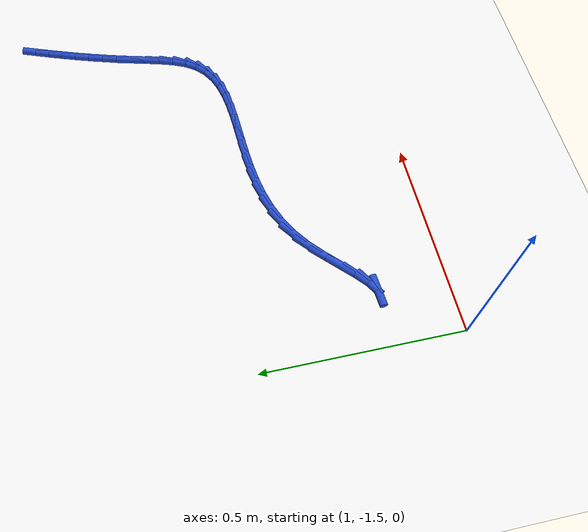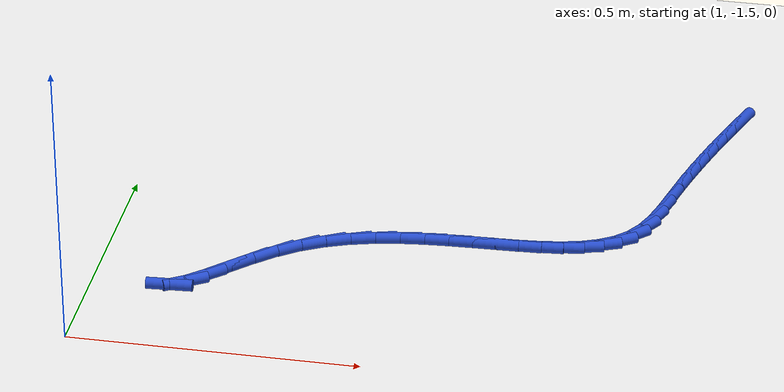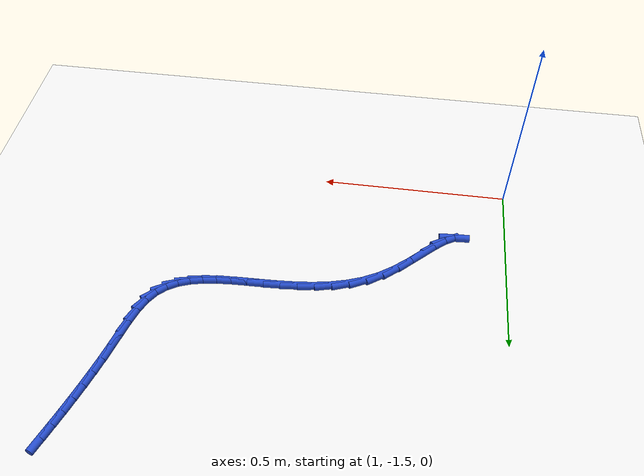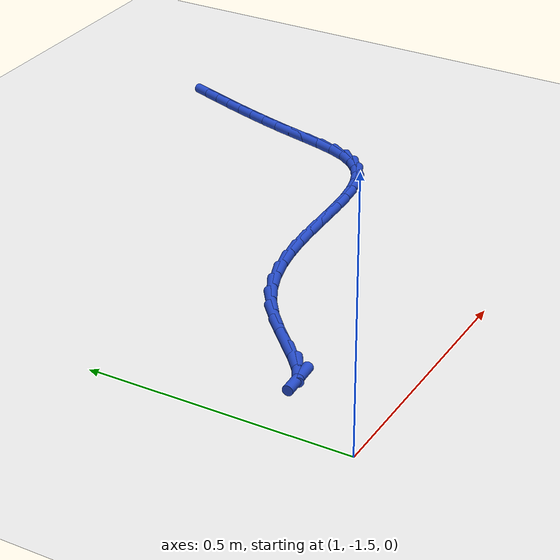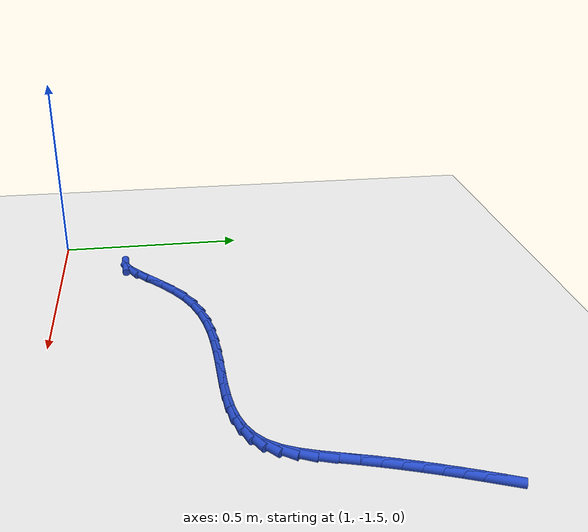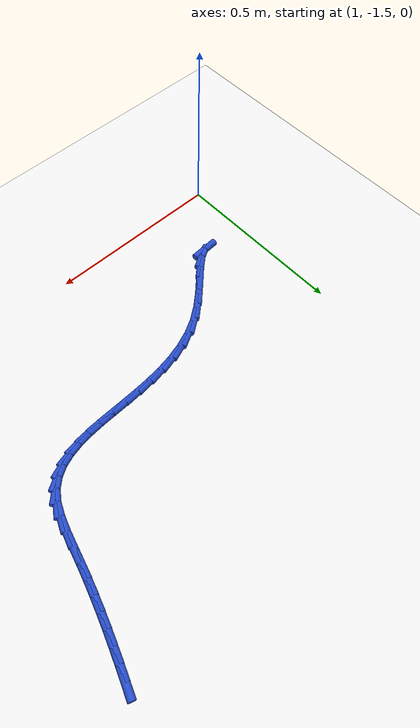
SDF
<sdf version="1.6">
 <world name="default">
  <model name="ground_plane">
   <static>1</static>
   <link name="link">
    <collision name="collision">
     <geometry><plane><normal>0 0 1</normal><size>100 100</size></plane></geometry>
     <surface><friction><ode><mu>100</mu><mu2>50</mu2></ode></friction></surface>
    </collision>
    <visual name="visual">
     <cast_shadows>0</cast_shadows>
     <geometry><plane><normal>0 0 1</normal><size>100 100</size></plane></geometry>
     <material>
      <script><uri>file://media/materials/scripts/gazebo.material</uri><name>Gazebo/WhiteGlow</name></script>
     </material>
    </visual>
   </link>
  </model>
  <model name="line">
   <link name="link_116">
    <pose>2.02360014330978 -0.607512243521702 0.01 0 1.57 1.224107569362798</pose>
    <collision name="collision">
     <geometry><cylinder><radius>0.01</radius><length>0.08</length></cylinder></geometry>
    </collision>
    <visual name="visual">
     <material>
      <script><name>Gazebo/Blue</name><uri>file://media/materials/scripts/gazebo.material</uri></script>
     </material>
     <geometry><cylinder><radius>0.01</radius><length>0.08</length></cylinder></geometry>
    </visual>
   </link>
   <link name="link_117">
    <pose>2.011055382607528 -0.642235287349777 0.01 0 1.57 1.2345394833591832</pose>
    <collision name="collision">
     <geometry><cylinder><radius>0.01</radius><length>0.08</length></cylinder></geometry>
    </collision>
    <visual name="visual">
     <material>
      <script><name>Gazebo/Blue</name><uri>file://media/materials/scripts/gazebo.material</uri></script>
     </material>
     <geometry><cylinder><radius>0.01</radius><length>0.08</length></cylinder></geometry>
    </visual>
   </link>
   <link name="link_118">
    <pose>1.998855506883958 -0.6771388568249171 0.01 0 1.57 1.2464723529939545</pose>
    <collision name="collision">
     <geometry><cylinder><radius>0.01</radius><length>0.08</length></cylinder></geometry>
    </collision>
    <visual name="visual">
     <material>
      <script><name>Gazebo/Blue</name><uri>file://media/materials/scripts/gazebo.material</uri></script>
     </material>
     <geometry><cylinder><radius>0.01</radius><length>0.08</length></cylinder></geometry>
    </visual>
   </link>
   <link name="link_119">
    <pose>1.9870168550860985 -0.7123524874140951 0.01 0 1.57 1.2597694968657667</pose>
    <collision name="collision">
     <geometry><cylinder><radius>0.01</radius><length>0.08</length></cylinder></geometry>
    </collision>
    <visual name="visual">
     <material>
      <script><name>Gazebo/Blue</name><uri>file://media/materials/scripts/gazebo.material</uri></script>
     </material>
     <geometry><cylinder><radius>0.01</radius><length>0.08</length></cylinder></geometry>
    </visual>
   </link>
   <link name="link_120">
    <pose>1.9755557661609815 -0.7480057145842833 0.01 0 1.57 1.274269606430975</pose>
    <collision name="collision">
     <geometry><cylinder><radius>0.01</radius><length>0.08</length></cylinder></geometry>
    </collision>
    <visual name="visual">
     <material>
      <script><name>Gazebo/Blue</name><uri>file://media/materials/scripts/gazebo.material</uri></script>
     </material>
     <geometry><cylinder><radius>0.01</radius><length>0.08</length></cylinder></geometry>
    </visual>
   </link>
   <link name="link_121">
    <pose>1.9644885790556386 -0.7842280738024552 0.01 0 1.57 1.2897923278593089</pose>
    <collision name="collision">
     <geometry><cylinder><radius>0.01</radius><length>0.08</length></cylinder></geometry>
    </collision>
    <visual name="visual">
     <material>
      <script><name>Gazebo/Blue</name><uri>file://media/materials/scripts/gazebo.material</uri></script>
     </material>
     <geometry><cylinder><radius>0.01</radius><length>0.08</length></cylinder></geometry>
    </visual>
   </link>
   <link name="link_122">
    <pose>1.9538316327171015 -0.8211491005355831 0.01 0 1.57 1.306144644204767</pose>
    <collision name="collision">
     <geometry><cylinder><radius>0.01</radius><length>0.08</length></cylinder></geometry>
    </collision>
    <visual name="visual">
     <material>
      <script><name>Gazebo/Blue</name><uri>file://media/materials/scripts/gazebo.material</uri></script>
     </material>
     <geometry><cylinder><radius>0.01</radius><length>0.08</length></cylinder></geometry>
    </visual>
   </link>
   <link name="link_123">
    <pose>1.9436012660924011 -0.8588983302506403 0.01 0 1.57 1.3222337817253849</pose>
    <collision name="collision">
     <geometry><cylinder><radius>0.01</radius><length>0.08</length></cylinder></geometry>
    </collision>
    <visual name="visual">
     <material>
      <script><name>Gazebo/Blue</name><uri>file://media/materials/scripts/gazebo.material</uri></script>
     </material>
     <geometry><cylinder><radius>0.01</radius><length>0.08</length></cylinder></geometry>
    </visual>
   </link>
   <link name="link_124">
    <pose>1.9337877763992808 -0.8975628399582946 0.01 0 1.57 1.3175713329107523</pose>
    <collision name="collision">
     <geometry><cylinder><radius>0.01</radius><length>0.08</length></cylinder></geometry>
    </collision>
    <visual name="visual">
     <material>
      <script><name>Gazebo/Blue</name><uri>file://media/materials/scripts/gazebo.material</uri></script>
     </material>
     <geometry><cylinder><radius>0.01</radius><length>0.08</length></cylinder></geometry>
    </visual>
   </link>
   <link name="link_125">
    <pose>1.9237775730246256 -0.9362451274657148 0.01 0 1.57 1.269819924147685</pose>
    <collision name="collision">
     <geometry><cylinder><radius>0.01</radius><length>0.08</length></cylinder></geometry>
    </collision>
    <visual name="visual">
     <material>
      <script><name>Gazebo/Blue</name><uri>file://media/materials/scripts/gazebo.material</uri></script>
     </material>
     <geometry><cylinder><radius>0.01</radius><length>0.08</length></cylinder></geometry>
    </visual>
   </link>
   <link name="link_126">
    <pose>1.9123504269601233 -0.9730586268542699 0.01 0 1.57 1.1673969978058532</pose>
    <collision name="collision">
     <geometry><cylinder><radius>0.01</radius><length>0.08</length></cylinder></geometry>
    </collision>
    <visual name="visual">
     <material>
      <script><name>Gazebo/Blue</name><uri>file://media/materials/scripts/gazebo.material</uri></script>
     </material>
     <geometry><cylinder><radius>0.01</radius><length>0.08</length></cylinder></geometry>
    </visual>
   </link>
   <link name="link_127">
    <pose>1.8982595173517458 -1.0060734168387566 0.01 0 1.57 0.9900380048926563</pose>
    <collision name="collision">
     <geometry><cylinder><radius>0.01</radius><length>0.08</length></cylinder></geometry>
    </collision>
    <visual name="visual">
     <material>
      <script><name>Gazebo/Blue</name><uri>file://media/materials/scripts/gazebo.material</uri></script>
     </material>
     <geometry><cylinder><radius>0.01</radius><length>0.08</length></cylinder></geometry>
    </visual>
   </link>
   <link name="link_128">
    <pose>1.8803033093755706 -1.0334351401526831 0.01 0 1.57 0.7639537842784003</pose>
    <collision name="collision">
     <geometry><cylinder><radius>0.01</radius><length>0.08</length></cylinder></geometry>
    </collision>
    <visual name="visual">
     <material>
      <script><name>Gazebo/Blue</name><uri>file://media/materials/scripts/gazebo.material</uri></script>
     </material>
     <geometry><cylinder><radius>0.01</radius><length>0.08</length></cylinder></geometry>
    </visual>
   </link>
   <link name="link_129">
    <pose>1.858118575325423 -1.0546882341375283 0.01 0 1.57 0.5488258272944746</pose>
    <collision name="collision">
     <geometry><cylinder><radius>0.01</radius><length>0.08</length></cylinder></geometry>
    </collision>
    <visual name="visual">
     <material>
      <script><name>Gazebo/Blue</name><uri>file://media/materials/scripts/gazebo.material</uri></script>
     </material>
     <geometry><cylinder><radius>0.01</radius><length>0.08</length></cylinder></geometry>
    </visual>
   </link>
   <link name="link_130">
    <pose>1.8320809523332084 -1.0706100019063325 0.01 0 1.57 0.36917548533767147</pose>
    <collision name="collision">
     <geometry><cylinder><radius>0.01</radius><length>0.08</length></cylinder></geometry>
    </collision>
    <visual name="visual">
     <material>
      <script><name>Gazebo/Blue</name><uri>file://media/materials/scripts/gazebo.material</uri></script>
     </material>
     <geometry><cylinder><radius>0.01</radius><length>0.08</length></cylinder></geometry>
    </visual>
   </link>
   <link name="link_131">
    <pose>1.802591375647621 -1.0820199588695247 0.01 0 1.57 0.23286764847522715</pose>
    <collision name="collision">
     <geometry><cylinder><radius>0.01</radius><length>0.08</length></cylinder></geometry>
    </collision>
    <visual name="visual">
     <material>
      <script><name>Gazebo/Blue</name><uri>file://media/materials/scripts/gazebo.material</uri></script>
     </material>
     <geometry><cylinder><radius>0.01</radius><length>0.08</length></cylinder></geometry>
    </visual>
   </link>
   <link name="link_132">
    <pose>1.7700507805173564 -1.089737620437535 0.01 0 1.57 0.13681504912963693</pose>
    <collision name="collision">
     <geometry><cylinder><radius>0.01</radius><length>0.08</length></cylinder></geometry>
    </collision>
    <visual name="visual">
     <material>
      <script><name>Gazebo/Blue</name><uri>file://media/materials/scripts/gazebo.material</uri></script>
     </material>
     <geometry><cylinder><radius>0.01</radius><length>0.08</length></cylinder></geometry>
    </visual>
   </link>
   <link name="link_133">
    <pose>1.7348601021911083 -1.094582502020792 0.01 0 1.57 0.07442504533472201</pose>
    <collision name="collision">
     <geometry><cylinder><radius>0.01</radius><length>0.08</length></cylinder></geometry>
    </collision>
    <visual name="visual">
     <material>
      <script><name>Gazebo/Blue</name><uri>file://media/materials/scripts/gazebo.material</uri></script>
     </material>
     <geometry><cylinder><radius>0.01</radius><length>0.08</length></cylinder></geometry>
    </visual>
   </link>
   <link name="link_134">
    <pose>1.697420275917572 -1.097374119029725 0.01 0 1.57 0.03963170896375644</pose>
    <collision name="collision">
     <geometry><cylinder><radius>0.01</radius><length>0.08</length></cylinder></geometry>
    </collision>
    <visual name="visual">
     <material>
      <script><name>Gazebo/Blue</name><uri>file://media/materials/scripts/gazebo.material</uri></script>
     </material>
     <geometry><cylinder><radius>0.01</radius><length>0.08</length></cylinder></geometry>
    </visual>
   </link>
   <link name="link_135">
    <pose>1.6581322369454423 -1.0989319868747633 0.01 0 1.57 0.02806738393812196</pose>
    <collision name="collision">
     <geometry><cylinder><radius>0.01</radius><length>0.08</length></cylinder></geometry>
    </collision>
    <visual name="visual">
     <material>
      <script><name>Gazebo/Blue</name><uri>file://media/materials/scripts/gazebo.material</uri></script>
     </material>
     <geometry><cylinder><radius>0.01</radius><length>0.08</length></cylinder></geometry>
    </visual>
   </link>
   <link name="link_136">
    <pose>1.617396920523413 -1.1000756209663358 0.01 0 1.57 0.0370546986733114</pose>
    <collision name="collision">
     <geometry><cylinder><radius>0.01</radius><length>0.08</length></cylinder></geometry>
    </collision>
    <visual name="visual">
     <material>
      <script><name>Gazebo/Blue</name><uri>file://media/materials/scripts/gazebo.material</uri></script>
     </material>
     <geometry><cylinder><radius>0.01</radius><length>0.08</length></cylinder></geometry>
    </visual>
   </link>
   <link name="link_137">
    <pose>1.575615261900179 -1.101624536714872 0.01 0 1.57 0.06528312157369233</pose>
    <collision name="collision">
     <geometry><cylinder><radius>0.01</radius><length>0.08</length></cylinder></geometry>
    </collision>
    <visual name="visual">
     <material>
      <script><name>Gazebo/Blue</name><uri>file://media/materials/scripts/gazebo.material</uri></script>
     </material>
     <geometry><cylinder><radius>0.01</radius><length>0.08</length></cylinder></geometry>
    </visual>
   </link>
   <link name="link_138">
    <pose>1.5331881963244358 -1.1043982495308011 0.01 0 1.57 0.1124334036887651</pose>
    <collision name="collision">
     <geometry><cylinder><radius>0.01</radius><length>0.08</length></cylinder></geometry>
    </collision>
    <visual name="visual">
     <material>
      <script><name>Gazebo/Blue</name><uri>file://media/materials/scripts/gazebo.material</uri></script>
     </material>
     <geometry><cylinder><radius>0.01</radius><length>0.08</length></cylinder></geometry>
    </visual>
   </link>
   <link name="link_139">
    <pose>1.4905166590448777 -1.1092162748245527 0.01 0 1.57 0.1787567505550353</pose>
    <collision name="collision">
     <geometry><cylinder><radius>0.01</radius><length>0.08</length></cylinder></geometry>
    </collision>
    <visual name="visual">
     <material>
      <script><name>Gazebo/Blue</name><uri>file://media/materials/scripts/gazebo.material</uri></script>
     </material>
     <geometry><cylinder><radius>0.01</radius><length>0.08</length></cylinder></geometry>
    </visual>
   </link>
   <link name="link_140">
    <pose>1.448001585310199 -1.116898128006555 0.01 0 1.57 0.26452523144159124</pose>
    <collision name="collision">
     <geometry><cylinder><radius>0.01</radius><length>0.08</length></cylinder></geometry>
    </collision>
    <visual name="visual">
     <material>
      <script><name>Gazebo/Blue</name><uri>file://media/materials/scripts/gazebo.material</uri></script>
     </material>
     <geometry><cylinder><radius>0.01</radius><length>0.08</length></cylinder></geometry>
    </visual>
   </link>
   <link name="link_141">
    <pose>1.406043910369096 -1.128263324487238 0.01 0 1.57 0.3692772869914857</pose>
    <collision name="collision">
     <geometry><cylinder><radius>0.01</radius><length>0.08</length></cylinder></geometry>
    </collision>
    <visual name="visual">
     <material>
      <script><name>Gazebo/Blue</name><uri>file://media/materials/scripts/gazebo.material</uri></script>
     </material>
     <geometry><cylinder><radius>0.01</radius><length>0.08</length></cylinder></geometry>
    </visual>
   </link>
   <link name="link_142">
    <pose>1.3650445694702606 -1.1441313796770305 0.01 0 1.57 0.49092034542304436</pose>
    <collision name="collision">
     <geometry><cylinder><radius>0.01</radius><length>0.08</length></cylinder></geometry>
    </collision>
    <visual name="visual">
     <material>
      <script><name>Gazebo/Blue</name><uri>file://media/materials/scripts/gazebo.material</uri></script>
     </material>
     <geometry><cylinder><radius>0.01</radius><length>0.08</length></cylinder></geometry>
    </visual>
   </link>
   <link name="link_143">
    <pose>1.3254044978623893 -1.165321808986362 0.01 0 1.57 0.6225600024430593</pose>
    <collision name="collision">
     <geometry><cylinder><radius>0.01</radius><length>0.08</length></cylinder></geometry>
    </collision>
    <visual name="visual">
     <material>
      <script><name>Gazebo/Blue</name><uri>file://media/materials/scripts/gazebo.material</uri></script>
     </material>
     <geometry><cylinder><radius>0.01</radius><length>0.08</length></cylinder></geometry>
    </visual>
   </link>
   <link name="link_144">
    <pose>1.287521995313925 -1.1925131434922507 0.01 0 1.57 0.7234105777416716</pose>
    <collision name="collision">
     <geometry><cylinder><radius>0.01</radius><length>0.08</length></cylinder></geometry>
    </collision>
    <visual name="visual">
     <material>
      <script><name>Gazebo/Blue</name><uri>file://media/materials/scripts/gazebo.material</uri></script>
     </material>
     <geometry><cylinder><radius>0.01</radius><length>0.08</length></cylinder></geometry>
    </visual>
   </link>
   <link name="link_145">
    <pose>1.2517526997577668 -1.2241017304292832 0.01 0 1.57 0.7732171420563585</pose>
    <collision name="collision">
     <geometry><cylinder><radius>0.01</radius><length>0.08</length></cylinder></geometry>
    </collision>
    <visual name="visual">
     <material>
      <script><name>Gazebo/Blue</name><uri>file://media/materials/scripts/gazebo.material</uri></script>
     </material>
     <geometry><cylinder><radius>0.01</radius><length>0.08</length></cylinder></geometry>
    </visual>
   </link>
   <link name="link_146">
    <pose>1.2184176749427653 -1.2566343800116184 0.01 0 1.57 0.7753174392294281</pose>
    <collision name="collision">
     <geometry><cylinder><radius>0.01</radius><length>0.08</length></cylinder></geometry>
    </collision>
    <visual name="visual">
     <material>
      <script><name>Gazebo/Blue</name><uri>file://media/materials/scripts/gazebo.material</uri></script>
     </material>
     <geometry><cylinder><radius>0.01</radius><length>0.08</length></cylinder></geometry>
    </visual>
   </link>
   <link name="link_147">
    <pose>1.1878369891041893 -1.2866046477122148 0.01 0 1.57 0.715390269900811</pose>
    <collision name="collision">
     <geometry><cylinder><radius>0.01</radius><length>0.08</length></cylinder></geometry>
    </collision>
    <visual name="visual">
     <material>
      <script><name>Gazebo/Blue</name><uri>file://media/materials/scripts/gazebo.material</uri></script>
     </material>
     <geometry><cylinder><radius>0.01</radius><length>0.08</length></cylinder></geometry>
    </visual>
   </link>
   <link name="link_148">
    <pose>1.1603307104773082 -1.3105060890040308 0.01 0 1.57 0.5361112939901539</pose>
    <collision name="collision">
     <geometry><cylinder><radius>0.01</radius><length>0.08</length></cylinder></geometry>
    </collision>
    <visual name="visual">
     <material>
      <script><name>Gazebo/Blue</name><uri>file://media/materials/scripts/gazebo.material</uri></script>
     </material>
     <geometry><cylinder><radius>0.01</radius><length>0.08</length></cylinder></geometry>
    </visual>
   </link>
   <link name="link_149">
    <pose>1.1362189072973907 -1.3248322593600237 0.01 0 1.57 0.061042931761151456</pose>
    <collision name="collision">
     <geometry><cylinder><radius>0.01</radius><length>0.08</length></cylinder></geometry>
    </collision>
    <visual name="visual">
     <material>
      <script><name>Gazebo/Blue</name><uri>file://media/materials/scripts/gazebo.material</uri></script>
     </material>
     <geometry><cylinder><radius>0.01</radius><length>0.08</length></cylinder></geometry>
    </visual>
   </link>
  </model>
 </world>
</sdf>
